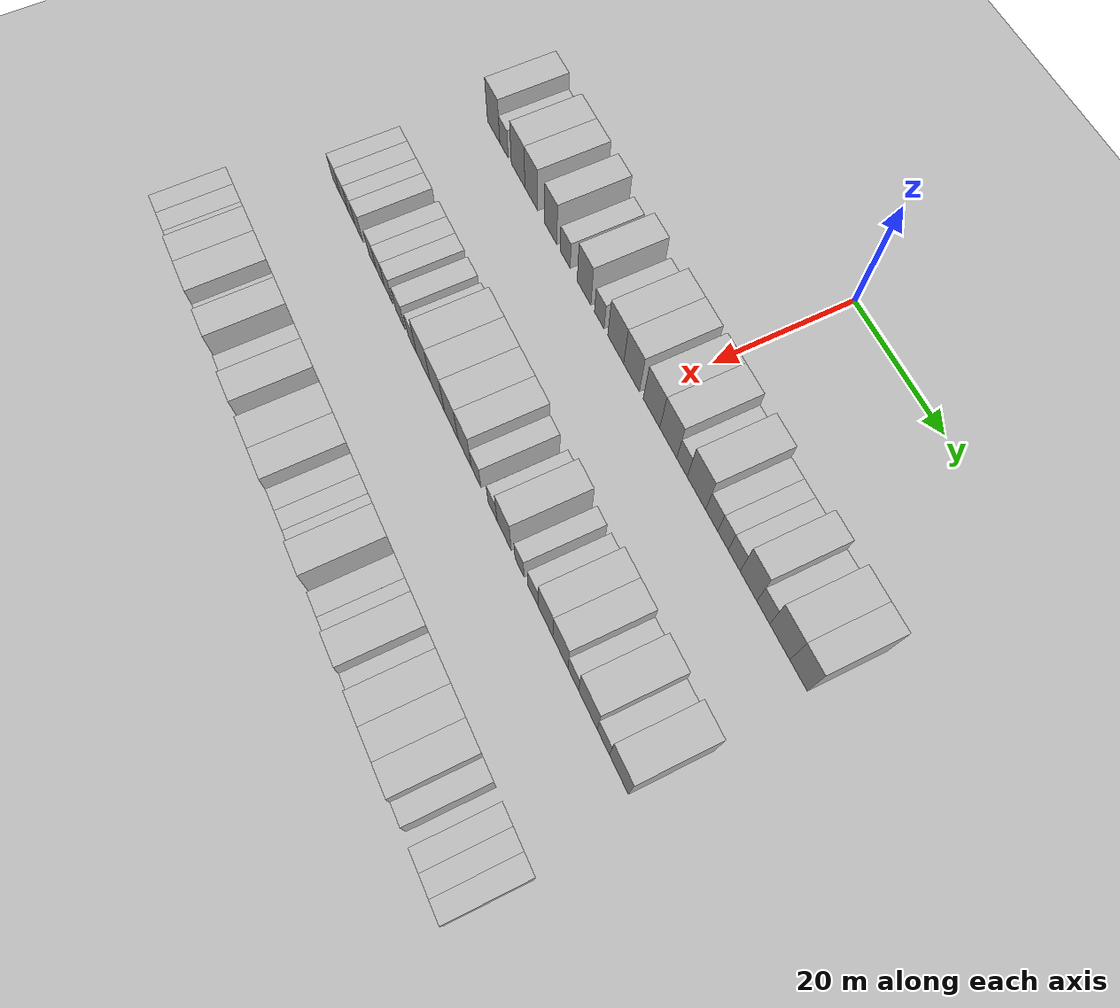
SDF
<sdf version="1.6">
 <world name="default">
  <include><name>ground_plane_1</name><uri>model://HANNAS_ground_plane</uri></include>
  <include>
   <name>ground_plane_2</name>
   <uri>model://HANNAS_ground_plane</uri>
   <pose>100 0 0  0 0 0</pose>
  </include>
  <model name="building_37">
   <static>1</static>
   <pose>25.0000 -42.3587 0 0.000000 0.000000 0.000000</pose>
   <link name="link">
    <pose>0 0 4.50 0 0 0</pose>
    <collision name="collision"><geometry><box><size>10.0000 3.9419 9.0000</size></box></geometry></collision>
    <visual name="visual">
     <cast_shadows>0</cast_shadows>
     <geometry><box><size>10.0000 3.9419 9.0000</size></box></geometry>
     <material>
      <script>
       <uri>model://HANNAS_wall/materials/scripts</uri>
       <uri>model://HANNAS_wall/materials/textures</uri>
       <name>vrc/HANNAS_wall</name>
      </script>
     </material>
    </visual>
   </link>
  </model>
  <model name="building_38">
   <static>1</static>
   <pose>25.0000 -39.0731 0 0.000000 0.000000 0.000000</pose>
   <link name="link">
    <pose>0 0 3.00 0 0 0</pose>
    <collision name="collision"><geometry><box><size>10.0000 2.6292 6.0000</size></box></geometry></collision>
    <visual name="visual">
     <cast_shadows>0</cast_shadows>
     <geometry><box><size>10.0000 2.6292 6.0000</size></box></geometry>
     <material>
      <script>
       <uri>model://HANNAS_wall/materials/scripts</uri>
       <uri>model://HANNAS_wall/materials/textures</uri>
       <name>vrc/HANNAS_wall</name>
      </script>
     </material>
    </visual>
   </link>
  </model>
  <model name="building_39">
   <static>1</static>
   <pose>25.0000 -34.6380 0 0.000000 0.000000 0.000000</pose>
   <link name="link">
    <pose>0 0 4.50 0 0 0</pose>
    <collision name="collision"><geometry><box><size>10.0000 4.2411 9.0000</size></box></geometry></collision>
    <visual name="visual">
     <cast_shadows>0</cast_shadows>
     <geometry><box><size>10.0000 4.2411 9.0000</size></box></geometry>
     <material>
      <script>
       <uri>model://HANNAS_wall/materials/scripts</uri>
       <uri>model://HANNAS_wall/materials/textures</uri>
       <name>vrc/HANNAS_wall</name>
      </script>
     </material>
    </visual>
   </link>
  </model>
  <model name="building_40">
   <static>1</static>
   <pose>25.0000 -30.5647 0 0.000000 0.000000 0.000000</pose>
   <link name="link">
    <pose>0 0 4.50 0 0 0</pose>
    <collision name="collision"><geometry><box><size>10.0000 3.9054 9.0000</size></box></geometry></collision>
    <visual name="visual">
     <cast_shadows>0</cast_shadows>
     <geometry><box><size>10.0000 3.9054 9.0000</size></box></geometry>
     <material>
      <script>
       <uri>model://HANNAS_wall/materials/scripts</uri>
       <uri>model://HANNAS_wall/materials/textures</uri>
       <name>vrc/HANNAS_wall</name>
      </script>
     </material>
    </visual>
   </link>
  </model>
  <model name="building_41">
   <static>1</static>
   <pose>25.0000 -24.7812 0 0.000000 0.000000 0.000000</pose>
   <link name="link">
    <pose>0 0 4.50 0 0 0</pose>
    <collision name="collision"><geometry><box><size>10.0000 3.6616 9.0000</size></box></geometry></collision>
    <visual name="visual">
     <cast_shadows>0</cast_shadows>
     <geometry><box><size>10.0000 3.6616 9.0000</size></box></geometry>
     <material>
      <script>
       <uri>model://HANNAS_wall/materials/scripts</uri>
       <uri>model://HANNAS_wall/materials/textures</uri>
       <name>vrc/HANNAS_wall</name>
      </script>
     </material>
    </visual>
   </link>
  </model>
  <model name="building_42">
   <static>1</static>
   <pose>25.0000 -20.5192 0 0.000000 0.000000 0.000000</pose>
   <link name="link">
    <pose>0 0 3.00 0 0 0</pose>
    <collision name="collision"><geometry><box><size>10.0000 2.8624 6.0000</size></box></geometry></collision>
    <visual name="visual">
     <cast_shadows>0</cast_shadows>
     <geometry><box><size>10.0000 2.8624 6.0000</size></box></geometry>
     <material>
      <script>
       <uri>model://HANNAS_wall/materials/scripts</uri>
       <uri>model://HANNAS_wall/materials/textures</uri>
       <name>vrc/HANNAS_wall</name>
      </script>
     </material>
    </visual>
   </link>
  </model>
  <model name="building_43">
   <static>1</static>
   <pose>25.0000 -15.1681 0 0.000000 0.000000 0.000000</pose>
   <link name="link">
    <pose>0 0 4.50 0 0 0</pose>
    <collision name="collision"><geometry><box><size>10.0000 3.8398 9.0000</size></box></geometry></collision>
    <visual name="visual">
     <cast_shadows>0</cast_shadows>
     <geometry><box><size>10.0000 3.8398 9.0000</size></box></geometry>
     <material>
      <script>
       <uri>model://HANNAS_wall/materials/scripts</uri>
       <uri>model://HANNAS_wall/materials/textures</uri>
       <name>vrc/HANNAS_wall</name>
      </script>
     </material>
    </visual>
   </link>
  </model>
  <model name="building_44">
   <static>1</static>
   <pose>25.0000 -10.9305 0 0.000000 0.000000 0.000000</pose>
   <link name="link">
    <pose>0 0 3.00 0 0 0</pose>
    <collision name="collision"><geometry><box><size>10.0000 2.6355 6.0000</size></box></geometry></collision>
    <visual name="visual">
     <cast_shadows>0</cast_shadows>
     <geometry><box><size>10.0000 2.6355 6.0000</size></box></geometry>
     <material>
      <script>
       <uri>model://HANNAS_wall/materials/scripts</uri>
       <uri>model://HANNAS_wall/materials/textures</uri>
       <name>vrc/HANNAS_wall</name>
      </script>
     </material>
    </visual>
   </link>
  </model>
  <model name="building_45">
   <static>1</static>
   <pose>25.0000 -6.4757 0 0.000000 0.000000 0.000000</pose>
   <link name="link">
    <pose>0 0 4.50 0 0 0</pose>
    <collision name="collision"><geometry><box><size>10.0000 4.2740 9.0000</size></box></geometry></collision>
    <visual name="visual">
     <cast_shadows>0</cast_shadows>
     <geometry><box><size>10.0000 4.2740 9.0000</size></box></geometry>
     <material>
      <script>
       <uri>model://HANNAS_wall/materials/scripts</uri>
       <uri>model://HANNAS_wall/materials/textures</uri>
       <name>vrc/HANNAS_wall</name>
      </script>
     </material>
    </visual>
   </link>
  </model>
  <model name="building_46">
   <static>1</static>
   <pose>25.0000 -2.2622 0 0.000000 0.000000 0.000000</pose>
   <link name="link">
    <pose>0 0 4.50 0 0 0</pose>
    <collision name="collision"><geometry><box><size>10.0000 4.1531 9.0000</size></box></geometry></collision>
    <visual name="visual">
     <cast_shadows>0</cast_shadows>
     <geometry><box><size>10.0000 4.1531 9.0000</size></box></geometry>
     <material>
      <script>
       <uri>model://HANNAS_wall/materials/scripts</uri>
       <uri>model://HANNAS_wall/materials/textures</uri>
       <name>vrc/HANNAS_wall</name>
      </script>
     </material>
    </visual>
   </link>
  </model>
  <model name="building_47">
   <static>1</static>
   <pose>25.0000 2.9210 0 0.000000 0.000000 0.000000</pose>
   <link name="link">
    <pose>0 0 4.50 0 0 0</pose>
    <collision name="collision"><geometry><box><size>10.0000 4.2133 9.0000</size></box></geometry></collision>
    <visual name="visual">
     <cast_shadows>0</cast_shadows>
     <geometry><box><size>10.0000 4.2133 9.0000</size></box></geometry>
     <material>
      <script>
       <uri>model://HANNAS_wall/materials/scripts</uri>
       <uri>model://HANNAS_wall/materials/textures</uri>
       <name>vrc/HANNAS_wall</name>
      </script>
     </material>
    </visual>
   </link>
  </model>
  <model name="building_48">
   <static>1</static>
   <pose>25.0000 7.1436 0 0.000000 0.000000 0.000000</pose>
   <link name="link">
    <pose>0 0 4.50 0 0 0</pose>
    <collision name="collision"><geometry><box><size>10.0000 4.2320 9.0000</size></box></geometry></collision>
    <visual name="visual">
     <cast_shadows>0</cast_shadows>
     <geometry><box><size>10.0000 4.2320 9.0000</size></box></geometry>
     <material>
      <script>
       <uri>model://HANNAS_wall/materials/scripts</uri>
       <uri>model://HANNAS_wall/materials/textures</uri>
       <name>vrc/HANNAS_wall</name>
      </script>
     </material>
    </visual>
   </link>
  </model>
  <model name="building_49">
   <static>1</static>
   <pose>25.0000 10.5421 0 0.000000 0.000000 0.000000</pose>
   <link name="link">
    <pose>0 0 3.00 0 0 0</pose>
    <collision name="collision"><geometry><box><size>10.0000 2.5648 6.0000</size></box></geometry></collision>
    <visual name="visual">
     <cast_shadows>0</cast_shadows>
     <geometry><box><size>10.0000 2.5648 6.0000</size></box></geometry>
     <material>
      <script>
       <uri>model://HANNAS_wall/materials/scripts</uri>
       <uri>model://HANNAS_wall/materials/textures</uri>
       <name>vrc/HANNAS_wall</name>
      </script>
     </material>
    </visual>
   </link>
  </model>
  <model name="building_50">
   <static>1</static>
   <pose>25.0000 14.0366 0 0.000000 0.000000 0.000000</pose>
   <link name="link">
    <pose>0 0 4.50 0 0 0</pose>
    <collision name="collision"><geometry><box><size>10.0000 4.4241 9.0000</size></box></geometry></collision>
    <visual name="visual">
     <cast_shadows>0</cast_shadows>
     <geometry><box><size>10.0000 4.4241 9.0000</size></box></geometry>
     <material>
      <script>
       <uri>model://HANNAS_wall/materials/scripts</uri>
       <uri>model://HANNAS_wall/materials/textures</uri>
       <name>vrc/HANNAS_wall</name>
      </script>
     </material>
    </visual>
   </link>
  </model>
  <model name="building_51">
   <static>1</static>
   <pose>25.0000 17.6739 0 0.000000 0.000000 0.000000</pose>
   <link name="link">
    <pose>0 0 3.00 0 0 0</pose>
    <collision name="collision"><geometry><box><size>10.0000 2.8505 6.0000</size></box></geometry></collision>
    <visual name="visual">
     <cast_shadows>0</cast_shadows>
     <geometry><box><size>10.0000 2.8505 6.0000</size></box></geometry>
     <material>
      <script>
       <uri>model://HANNAS_wall/materials/scripts</uri>
       <uri>model://HANNAS_wall/materials/textures</uri>
       <name>vrc/HANNAS_wall</name>
      </script>
     </material>
    </visual>
   </link>
  </model>
  <model name="building_52">
   <static>1</static>
   <pose>25.0000 20.3169 0 0.000000 0.000000 0.000000</pose>
   <link name="link">
    <pose>0 0 3.00 0 0 0</pose>
    <collision name="collision"><geometry><box><size>10.0000 2.4355 6.0000</size></box></geometry></collision>
    <visual name="visual">
     <cast_shadows>0</cast_shadows>
     <geometry><box><size>10.0000 2.4355 6.0000</size></box></geometry>
     <material>
      <script>
       <uri>model://HANNAS_wall/materials/scripts</uri>
       <uri>model://HANNAS_wall/materials/textures</uri>
       <name>vrc/HANNAS_wall</name>
      </script>
     </material>
    </visual>
   </link>
  </model>
  <model name="building_53">
   <static>1</static>
   <pose>25.0000 22.8967 0 0.000000 0.000000 0.000000</pose>
   <link name="link">
    <pose>0 0 3.00 0 0 0</pose>
    <collision name="collision"><geometry><box><size>10.0000 2.7239 6.0000</size></box></geometry></collision>
    <visual name="visual">
     <cast_shadows>0</cast_shadows>
     <geometry><box><size>10.0000 2.7239 6.0000</size></box></geometry>
     <material>
      <script>
       <uri>model://HANNAS_wall/materials/scripts</uri>
       <uri>model://HANNAS_wall/materials/textures</uri>
       <name>vrc/HANNAS_wall</name>
      </script>
     </material>
    </visual>
   </link>
  </model>
  <model name="building_54">
   <static>1</static>
   <pose>25.0000 26.1334 0 0.000000 0.000000 0.000000</pose>
   <link name="link">
    <pose>0 0 4.50 0 0 0</pose>
    <collision name="collision"><geometry><box><size>10.0000 3.7496 9.0000</size></box></geometry></collision>
    <visual name="visual">
     <cast_shadows>0</cast_shadows>
     <geometry><box><size>10.0000 3.7496 9.0000</size></box></geometry>
     <material>
      <script>
       <uri>model://HANNAS_wall/materials/scripts</uri>
       <uri>model://HANNAS_wall/materials/textures</uri>
       <name>vrc/HANNAS_wall</name>
      </script>
     </material>
    </visual>
   </link>
  </model>
  <model name="building_55">
   <static>1</static>
   <pose>25.0000 29.4252 0 0.000000 0.000000 0.000000</pose>
   <link name="link">
    <pose>0 0 3.00 0 0 0</pose>
    <collision name="collision"><geometry><box><size>10.0000 2.8341 6.0000</size></box></geometry></collision>
    <visual name="visual">
     <cast_shadows>0</cast_shadows>
     <geometry><box><size>10.0000 2.8341 6.0000</size></box></geometry>
     <material>
      <script>
       <uri>model://HANNAS_wall/materials/scripts</uri>
       <uri>model://HANNAS_wall/materials/textures</uri>
       <name>vrc/HANNAS_wall</name>
      </script>
     </material>
    </visual>
   </link>
  </model>
  <model name="building_56">
   <static>1</static>
   <pose>25.0000 33.0128 0 0.000000 0.000000 0.000000</pose>
   <link name="link">
    <pose>0 0 4.50 0 0 0</pose>
    <collision name="collision"><geometry><box><size>10.0000 4.3410 9.0000</size></box></geometry></collision>
    <visual name="visual">
     <cast_shadows>0</cast_shadows>
     <geometry><box><size>10.0000 4.3410 9.0000</size></box></geometry>
     <material>
      <script>
       <uri>model://HANNAS_wall/materials/scripts</uri>
       <uri>model://HANNAS_wall/materials/textures</uri>
       <name>vrc/HANNAS_wall</name>
      </script>
     </material>
    </visual>
   </link>
  </model>
  <model name="building_57">
   <static>1</static>
   <pose>25.0000 37.0202 0 0.000000 0.000000 0.000000</pose>
   <link name="link">
    <pose>0 0 4.50 0 0 0</pose>
    <collision name="collision"><geometry><box><size>10.0000 3.6737 9.0000</size></box></geometry></collision>
    <visual name="visual">
     <cast_shadows>0</cast_shadows>
     <geometry><box><size>10.0000 3.6737 9.0000</size></box></geometry>
     <material>
      <script>
       <uri>model://HANNAS_wall/materials/scripts</uri>
       <uri>model://HANNAS_wall/materials/textures</uri>
       <name>vrc/HANNAS_wall</name>
      </script>
     </material>
    </visual>
   </link>
  </model>
  <model name="building_162">
   <static>1</static>
   <pose>47.0000 -42.9770 0 0.000000 0.000000 0.000000</pose>
   <link name="link">
    <pose>0 0 3.00 0 0 0</pose>
    <collision name="collision"><geometry><box><size>10.0000 2.5599 6.0000</size></box></geometry></collision>
    <visual name="visual">
     <cast_shadows>0</cast_shadows>
     <geometry><box><size>10.0000 2.5599 6.0000</size></box></geometry>
     <material>
      <script>
       <uri>model://HANNAS_wall/materials/scripts</uri>
       <uri>model://HANNAS_wall/materials/textures</uri>
       <name>vrc/HANNAS_wall</name>
      </script>
     </material>
    </visual>
   </link>
  </model>
  <model name="building_163">
   <static>1</static>
   <pose>47.0000 -40.2499 0 0.000000 0.000000 0.000000</pose>
   <link name="link">
    <pose>0 0 3.00 0 0 0</pose>
    <collision name="collision"><geometry><box><size>10.0000 2.8942 6.0000</size></box></geometry></collision>
    <visual name="visual">
     <cast_shadows>0</cast_shadows>
     <geometry><box><size>10.0000 2.8942 6.0000</size></box></geometry>
     <material>
      <script>
       <uri>model://HANNAS_wall/materials/scripts</uri>
       <uri>model://HANNAS_wall/materials/textures</uri>
       <name>vrc/HANNAS_wall</name>
      </script>
     </material>
    </visual>
   </link>
  </model>
  <model name="building_164">
   <static>1</static>
   <pose>47.0000 -37.5944 0 0.000000 0.000000 0.000000</pose>
   <link name="link">
    <pose>0 0 3.00 0 0 0</pose>
    <collision name="collision"><geometry><box><size>10.0000 2.4168 6.0000</size></box></geometry></collision>
    <visual name="visual">
     <cast_shadows>0</cast_shadows>
     <geometry><box><size>10.0000 2.4168 6.0000</size></box></geometry>
     <material>
      <script>
       <uri>model://HANNAS_wall/materials/scripts</uri>
       <uri>model://HANNAS_wall/materials/textures</uri>
       <name>vrc/HANNAS_wall</name>
      </script>
     </material>
    </visual>
   </link>
  </model>
  <model name="building_165">
   <static>1</static>
   <pose>47.0000 -35.0392 0 0.000000 0.000000 0.000000</pose>
   <link name="link">
    <pose>0 0 3.00 0 0 0</pose>
    <collision name="collision"><geometry><box><size>10.0000 2.6936 6.0000</size></box></geometry></collision>
    <visual name="visual">
     <cast_shadows>0</cast_shadows>
     <geometry><box><size>10.0000 2.6936 6.0000</size></box></geometry>
     <material>
      <script>
       <uri>model://HANNAS_wall/materials/scripts</uri>
       <uri>model://HANNAS_wall/materials/textures</uri>
       <name>vrc/HANNAS_wall</name>
      </script>
     </material>
    </visual>
   </link>
  </model>
  <model name="building_166">
   <static>1</static>
   <pose>47.0000 -30.4539 0 0.000000 0.000000 0.000000</pose>
   <link name="link">
    <pose>0 0 3.00 0 0 0</pose>
    <collision name="collision"><geometry><box><size>10.0000 2.4769 6.0000</size></box></geometry></collision>
    <visual name="visual">
     <cast_shadows>0</cast_shadows>
     <geometry><box><size>10.0000 2.4769 6.0000</size></box></geometry>
     <material>
      <script>
       <uri>model://HANNAS_wall/materials/scripts</uri>
       <uri>model://HANNAS_wall/materials/textures</uri>
       <name>vrc/HANNAS_wall</name>
      </script>
     </material>
    </visual>
   </link>
  </model>
  <model name="building_167">
   <static>1</static>
   <pose>47.0000 -27.8784 0 0.000000 0.000000 0.000000</pose>
   <link name="link">
    <pose>0 0 3.00 0 0 0</pose>
    <collision name="collision"><geometry><box><size>10.0000 2.6741 6.0000</size></box></geometry></collision>
    <visual name="visual">
     <cast_shadows>0</cast_shadows>
     <geometry><box><size>10.0000 2.6741 6.0000</size></box></geometry>
     <material>
      <script>
       <uri>model://HANNAS_wall/materials/scripts</uri>
       <uri>model://HANNAS_wall/materials/textures</uri>
       <name>vrc/HANNAS_wall</name>
      </script>
     </material>
    </visual>
   </link>
  </model>
  <model name="building_168">
   <static>1</static>
   <pose>47.0000 -25.1900 0 0.000000 0.000000 0.000000</pose>
   <link name="link">
    <pose>0 0 3.00 0 0 0</pose>
    <collision name="collision"><geometry><box><size>10.0000 2.7028 6.0000</size></box></geometry></collision>
    <visual name="visual">
     <cast_shadows>0</cast_shadows>
     <geometry><box><size>10.0000 2.7028 6.0000</size></box></geometry>
     <material>
      <script>
       <uri>model://HANNAS_wall/materials/scripts</uri>
       <uri>model://HANNAS_wall/materials/textures</uri>
       <name>vrc/HANNAS_wall</name>
      </script>
     </material>
    </visual>
   </link>
  </model>
  <model name="building_169">
   <static>1</static>
   <pose>47.0000 -21.3608 0 0.000000 0.000000 0.000000</pose>
   <link name="link">
    <pose>0 0 3.00 0 0 0</pose>
    <collision name="collision"><geometry><box><size>10.0000 2.9554 6.0000</size></box></geometry></collision>
    <visual name="visual">
     <cast_shadows>0</cast_shadows>
     <geometry><box><size>10.0000 2.9554 6.0000</size></box></geometry>
     <material>
      <script>
       <uri>model://HANNAS_wall/materials/scripts</uri>
       <uri>model://HANNAS_wall/materials/textures</uri>
       <name>vrc/HANNAS_wall</name>
      </script>
     </material>
    </visual>
   </link>
  </model>
  <model name="building_170">
   <static>1</static>
   <pose>47.0000 -17.5515 0 0.000000 0.000000 0.000000</pose>
   <link name="link">
    <pose>0 0 3.00 0 0 0</pose>
    <collision name="collision"><geometry><box><size>10.0000 2.6632 6.0000</size></box></geometry></collision>
    <visual name="visual">
     <cast_shadows>0</cast_shadows>
     <geometry><box><size>10.0000 2.6632 6.0000</size></box></geometry>
     <material>
      <script>
       <uri>model://HANNAS_wall/materials/scripts</uri>
       <uri>model://HANNAS_wall/materials/textures</uri>
       <name>vrc/HANNAS_wall</name>
      </script>
     </material>
    </visual>
   </link>
  </model>
  <model name="building_171">
   <static>1</static>
   <pose>47.0000 -14.0822 0 0.000000 0.000000 0.000000</pose>
   <link name="link">
    <pose>0 0 4.50 0 0 0</pose>
    <collision name="collision"><geometry><box><size>10.0000 4.2752 9.0000</size></box></geometry></collision>
    <visual name="visual">
     <cast_shadows>0</cast_shadows>
     <geometry><box><size>10.0000 4.2752 9.0000</size></box></geometry>
     <material>
      <script>
       <uri>model://HANNAS_wall/materials/scripts</uri>
       <uri>model://HANNAS_wall/materials/textures</uri>
       <name>vrc/HANNAS_wall</name>
      </script>
     </material>
    </visual>
   </link>
  </model>
  <model name="building_172">
   <static>1</static>
   <pose>47.0000 -9.8358 0 0.000000 0.000000 0.000000</pose>
   <link name="link">
    <pose>0 0 4.50 0 0 0</pose>
    <collision name="collision"><geometry><box><size>10.0000 4.2177 9.0000</size></box></geometry></collision>
    <visual name="visual">
     <cast_shadows>0</cast_shadows>
     <geometry><box><size>10.0000 4.2177 9.0000</size></box></geometry>
     <material>
      <script>
       <uri>model://HANNAS_wall/materials/scripts</uri>
       <uri>model://HANNAS_wall/materials/textures</uri>
       <name>vrc/HANNAS_wall</name>
      </script>
     </material>
    </visual>
   </link>
  </model>
  <model name="building_173">
   <static>1</static>
   <pose>47.0000 -5.6814 0 0.000000 0.000000 0.000000</pose>
   <link name="link">
    <pose>0 0 4.50 0 0 0</pose>
    <collision name="collision"><geometry><box><size>10.0000 4.0912 9.0000</size></box></geometry></collision>
    <visual name="visual">
     <cast_shadows>0</cast_shadows>
     <geometry><box><size>10.0000 4.0912 9.0000</size></box></geometry>
     <material>
      <script>
       <uri>model://HANNAS_wall/materials/scripts</uri>
       <uri>model://HANNAS_wall/materials/textures</uri>
       <name>vrc/HANNAS_wall</name>
      </script>
     </material>
    </visual>
   </link>
  </model>
  <model name="building_174">
   <static>1</static>
   <pose>47.0000 -1.7182 0 0.000000 0.000000 0.000000</pose>
   <link name="link">
    <pose>0 0 4.50 0 0 0</pose>
    <collision name="collision"><geometry><box><size>10.0000 3.8352 9.0000</size></box></geometry></collision>
    <visual name="visual">
     <cast_shadows>0</cast_shadows>
     <geometry><box><size>10.0000 3.8352 9.0000</size></box></geometry>
     <material>
      <script>
       <uri>model://HANNAS_wall/materials/scripts</uri>
       <uri>model://HANNAS_wall/materials/textures</uri>
       <name>vrc/HANNAS_wall</name>
      </script>
     </material>
    </visual>
   </link>
  </model>
  <model name="building_175">
   <static>1</static>
   <pose>47.0000 1.5339 0 0.000000 0.000000 0.000000</pose>
   <link name="link">
    <pose>0 0 3.00 0 0 0</pose>
    <collision name="collision"><geometry><box><size>10.0000 2.6690 6.0000</size></box></geometry></collision>
    <visual name="visual">
     <cast_shadows>0</cast_shadows>
     <geometry><box><size>10.0000 2.6690 6.0000</size></box></geometry>
     <material>
      <script>
       <uri>model://HANNAS_wall/materials/scripts</uri>
       <uri>model://HANNAS_wall/materials/textures</uri>
       <name>vrc/HANNAS_wall</name>
      </script>
     </material>
    </visual>
   </link>
  </model>
  <model name="building_176">
   <static>1</static>
   <pose>47.0000 6.1188 0 0.000000 0.000000 0.000000</pose>
   <link name="link">
    <pose>0 0 3.00 0 0 0</pose>
    <collision name="collision"><geometry><box><size>10.0000 2.5008 6.0000</size></box></geometry></collision>
    <visual name="visual">
     <cast_shadows>0</cast_shadows>
     <geometry><box><size>10.0000 2.5008 6.0000</size></box></geometry>
     <material>
      <script>
       <uri>model://HANNAS_wall/materials/scripts</uri>
       <uri>model://HANNAS_wall/materials/textures</uri>
       <name>vrc/HANNAS_wall</name>
      </script>
     </material>
    </visual>
   </link>
  </model>
  <model name="building_177">
   <static>1</static>
   <pose>47.0000 9.2752 0 0.000000 0.000000 0.000000</pose>
   <link name="link">
    <pose>0 0 4.50 0 0 0</pose>
    <collision name="collision"><geometry><box><size>10.0000 3.8120 9.0000</size></box></geometry></collision>
    <visual name="visual">
     <cast_shadows>0</cast_shadows>
     <geometry><box><size>10.0000 3.8120 9.0000</size></box></geometry>
     <material>
      <script>
       <uri>model://HANNAS_wall/materials/scripts</uri>
       <uri>model://HANNAS_wall/materials/textures</uri>
       <name>vrc/HANNAS_wall</name>
      </script>
     </material>
    </visual>
   </link>
  </model>
  <model name="building_178">
   <static>1</static>
   <pose>47.0000 13.3831 0 0.000000 0.000000 0.000000</pose>
   <link name="link">
    <pose>0 0 3.00 0 0 0</pose>
    <collision name="collision"><geometry><box><size>10.0000 2.4039 6.0000</size></box></geometry></collision>
    <visual name="visual">
     <cast_shadows>0</cast_shadows>
     <geometry><box><size>10.0000 2.4039 6.0000</size></box></geometry>
     <material>
      <script>
       <uri>model://HANNAS_wall/materials/scripts</uri>
       <uri>model://HANNAS_wall/materials/textures</uri>
       <name>vrc/HANNAS_wall</name>
      </script>
     </material>
    </visual>
   </link>
  </model>
  <model name="building_179">
   <static>1</static>
   <pose>47.0000 16.9525 0 0.000000 0.000000 0.000000</pose>
   <link name="link">
    <pose>0 0 3.00 0 0 0</pose>
    <collision name="collision"><geometry><box><size>10.0000 2.7348 6.0000</size></box></geometry></collision>
    <visual name="visual">
     <cast_shadows>0</cast_shadows>
     <geometry><box><size>10.0000 2.7348 6.0000</size></box></geometry>
     <material>
      <script>
       <uri>model://HANNAS_wall/materials/scripts</uri>
       <uri>model://HANNAS_wall/materials/textures</uri>
       <name>vrc/HANNAS_wall</name>
      </script>
     </material>
    </visual>
   </link>
  </model>
  <model name="building_180">
   <static>1</static>
   <pose>47.0000 20.1521 0 0.000000 0.000000 0.000000</pose>
   <link name="link">
    <pose>0 0 4.50 0 0 0</pose>
    <collision name="collision"><geometry><box><size>10.0000 3.6645 9.0000</size></box></geometry></collision>
    <visual name="visual">
     <cast_shadows>0</cast_shadows>
     <geometry><box><size>10.0000 3.6645 9.0000</size></box></geometry>
     <material>
      <script>
       <uri>model://HANNAS_wall/materials/scripts</uri>
       <uri>model://HANNAS_wall/materials/textures</uri>
       <name>vrc/HANNAS_wall</name>
      </script>
     </material>
    </visual>
   </link>
  </model>
  <model name="building_181">
   <static>1</static>
   <pose>47.0000 23.8754 0 0.000000 0.000000 0.000000</pose>
   <link name="link">
    <pose>0 0 4.50 0 0 0</pose>
    <collision name="collision"><geometry><box><size>10.0000 3.7820 9.0000</size></box></geometry></collision>
    <visual name="visual">
     <cast_shadows>0</cast_shadows>
     <geometry><box><size>10.0000 3.7820 9.0000</size></box></geometry>
     <material>
      <script>
       <uri>model://HANNAS_wall/materials/scripts</uri>
       <uri>model://HANNAS_wall/materials/textures</uri>
       <name>vrc/HANNAS_wall</name>
      </script>
     </material>
    </visual>
   </link>
  </model>
  <model name="building_182">
   <static>1</static>
   <pose>47.0000 27.0585 0 0.000000 0.000000 0.000000</pose>
   <link name="link">
    <pose>0 0 3.00 0 0 0</pose>
    <collision name="collision"><geometry><box><size>10.0000 2.5841 6.0000</size></box></geometry></collision>
    <visual name="visual">
     <cast_shadows>0</cast_shadows>
     <geometry><box><size>10.0000 2.5841 6.0000</size></box></geometry>
     <material>
      <script>
       <uri>model://HANNAS_wall/materials/scripts</uri>
       <uri>model://HANNAS_wall/materials/textures</uri>
       <name>vrc/HANNAS_wall</name>
      </script>
     </material>
    </visual>
   </link>
  </model>
  <model name="building_183">
   <static>1</static>
   <pose>47.0000 30.5778 0 0.000000 0.000000 0.000000</pose>
   <link name="link">
    <pose>0 0 4.50 0 0 0</pose>
    <collision name="collision"><geometry><box><size>10.0000 4.4544 9.0000</size></box></geometry></collision>
    <visual name="visual">
     <cast_shadows>0</cast_shadows>
     <geometry><box><size>10.0000 4.4544 9.0000</size></box></geometry>
     <material>
      <script>
       <uri>model://HANNAS_wall/materials/scripts</uri>
       <uri>model://HANNAS_wall/materials/textures</uri>
       <name>vrc/HANNAS_wall</name>
      </script>
     </material>
    </visual>
   </link>
  </model>
  <model name="building_184">
   <static>1</static>
   <pose>47.0000 34.2448 0 0.000000 0.000000 0.000000</pose>
   <link name="link">
    <pose>0 0 3.00 0 0 0</pose>
    <collision name="collision"><geometry><box><size>10.0000 2.8797 6.0000</size></box></geometry></collision>
    <visual name="visual">
     <cast_shadows>0</cast_shadows>
     <geometry><box><size>10.0000 2.8797 6.0000</size></box></geometry>
     <material>
      <script>
       <uri>model://HANNAS_wall/materials/scripts</uri>
       <uri>model://HANNAS_wall/materials/textures</uri>
       <name>vrc/HANNAS_wall</name>
      </script>
     </material>
    </visual>
   </link>
  </model>
  <model name="building_185">
   <static>1</static>
   <pose>47.0000 37.8596 0 0.000000 0.000000 0.000000</pose>
   <link name="link">
    <pose>0 0 4.50 0 0 0</pose>
    <collision name="collision"><geometry><box><size>10.0000 4.3499 9.0000</size></box></geometry></collision>
    <visual name="visual">
     <cast_shadows>0</cast_shadows>
     <geometry><box><size>10.0000 4.3499 9.0000</size></box></geometry>
     <material>
      <script>
       <uri>model://HANNAS_wall/materials/scripts</uri>
       <uri>model://HANNAS_wall/materials/textures</uri>
       <name>vrc/HANNAS_wall</name>
      </script>
     </material>
    </visual>
   </link>
  </model>
  <model name="building_287">
   <static>1</static>
   <pose>69.0000 -46.3096 0 0.000000 0.000000 0.000000</pose>
   <link name="link">
    <pose>0 0 3.00 0 0 0</pose>
    <collision name="collision"><geometry><box><size>10.0000 2.8162 6.0000</size></box></geometry></collision>
    <visual name="visual">
     <cast_shadows>0</cast_shadows>
     <geometry><box><size>10.0000 2.8162 6.0000</size></box></geometry>
     <material>
      <script>
       <uri>model://HANNAS_wall/materials/scripts</uri>
       <uri>model://HANNAS_wall/materials/textures</uri>
       <name>vrc/HANNAS_wall</name>
      </script>
     </material>
    </visual>
   </link>
  </model>
  <model name="building_288">
   <static>1</static>
   <pose>69.0000 -43.4509 0 0.000000 0.000000 0.000000</pose>
   <link name="link">
    <pose>0 0 3.00 0 0 0</pose>
    <collision name="collision"><geometry><box><size>10.0000 2.9013 6.0000</size></box></geometry></collision>
    <visual name="visual">
     <cast_shadows>0</cast_shadows>
     <geometry><box><size>10.0000 2.9013 6.0000</size></box></geometry>
     <material>
      <script>
       <uri>model://HANNAS_wall/materials/scripts</uri>
       <uri>model://HANNAS_wall/materials/textures</uri>
       <name>vrc/HANNAS_wall</name>
      </script>
     </material>
    </visual>
   </link>
  </model>
  <model name="building_289">
   <static>1</static>
   <pose>69.0000 -40.5129 0 0.000000 0.000000 0.000000</pose>
   <link name="link">
    <pose>0 0 3.00 0 0 0</pose>
    <collision name="collision"><geometry><box><size>10.0000 2.9747 6.0000</size></box></geometry></collision>
    <visual name="visual">
     <cast_shadows>0</cast_shadows>
     <geometry><box><size>10.0000 2.9747 6.0000</size></box></geometry>
     <material>
      <script>
       <uri>model://HANNAS_wall/materials/scripts</uri>
       <uri>model://HANNAS_wall/materials/textures</uri>
       <name>vrc/HANNAS_wall</name>
      </script>
     </material>
    </visual>
   </link>
  </model>
  <model name="building_290">
   <static>1</static>
   <pose>69.0000 -37.1033 0 0.000000 0.000000 0.000000</pose>
   <link name="link">
    <pose>0 0 4.50 0 0 0</pose>
    <collision name="collision"><geometry><box><size>10.0000 3.8445 9.0000</size></box></geometry></collision>
    <visual name="visual">
     <cast_shadows>0</cast_shadows>
     <geometry><box><size>10.0000 3.8445 9.0000</size></box></geometry>
     <material>
      <script>
       <uri>model://HANNAS_wall/materials/scripts</uri>
       <uri>model://HANNAS_wall/materials/textures</uri>
       <name>vrc/HANNAS_wall</name>
      </script>
     </material>
    </visual>
   </link>
  </model>
  <model name="building_291">
   <static>1</static>
   <pose>69.0000 -32.9557 0 0.000000 0.000000 0.000000</pose>
   <link name="link">
    <pose>0 0 4.50 0 0 0</pose>
    <collision name="collision"><geometry><box><size>10.0000 4.4507 9.0000</size></box></geometry></collision>
    <visual name="visual">
     <cast_shadows>0</cast_shadows>
     <geometry><box><size>10.0000 4.4507 9.0000</size></box></geometry>
     <material>
      <script>
       <uri>model://HANNAS_wall/materials/scripts</uri>
       <uri>model://HANNAS_wall/materials/textures</uri>
       <name>vrc/HANNAS_wall</name>
      </script>
     </material>
    </visual>
   </link>
  </model>
  <model name="building_292">
   <static>1</static>
   <pose>69.0000 -29.4277 0 0.000000 0.000000 0.000000</pose>
   <link name="link">
    <pose>0 0 3.00 0 0 0</pose>
    <collision name="collision"><geometry><box><size>10.0000 2.6054 6.0000</size></box></geometry></collision>
    <visual name="visual">
     <cast_shadows>0</cast_shadows>
     <geometry><box><size>10.0000 2.6054 6.0000</size></box></geometry>
     <material>
      <script>
       <uri>model://HANNAS_wall/materials/scripts</uri>
       <uri>model://HANNAS_wall/materials/textures</uri>
       <name>vrc/HANNAS_wall</name>
      </script>
     </material>
    </visual>
   </link>
  </model>
  <model name="building_293">
   <static>1</static>
   <pose>69.0000 -26.1673 0 0.000000 0.000000 0.000000</pose>
   <link name="link">
    <pose>0 0 4.50 0 0 0</pose>
    <collision name="collision"><geometry><box><size>10.0000 3.9153 9.0000</size></box></geometry></collision>
    <visual name="visual">
     <cast_shadows>0</cast_shadows>
     <geometry><box><size>10.0000 3.9153 9.0000</size></box></geometry>
     <material>
      <script>
       <uri>model://HANNAS_wall/materials/scripts</uri>
       <uri>model://HANNAS_wall/materials/textures</uri>
       <name>vrc/HANNAS_wall</name>
      </script>
     </material>
    </visual>
   </link>
  </model>
  <model name="building_294">
   <static>1</static>
   <pose>69.0000 -21.7503 0 0.000000 0.000000 0.000000</pose>
   <link name="link">
    <pose>0 0 3.00 0 0 0</pose>
    <collision name="collision"><geometry><box><size>10.0000 2.9189 6.0000</size></box></geometry></collision>
    <visual name="visual">
     <cast_shadows>0</cast_shadows>
     <geometry><box><size>10.0000 2.9189 6.0000</size></box></geometry>
     <material>
      <script>
       <uri>model://HANNAS_wall/materials/scripts</uri>
       <uri>model://HANNAS_wall/materials/textures</uri>
       <name>vrc/HANNAS_wall</name>
      </script>
     </material>
    </visual>
   </link>
  </model>
  <model name="building_295">
   <static>1</static>
   <pose>69.0000 -17.2639 0 0.000000 0.000000 0.000000</pose>
   <link name="link">
    <pose>0 0 4.50 0 0 0</pose>
    <collision name="collision"><geometry><box><size>10.0000 4.0539 9.0000</size></box></geometry></collision>
    <visual name="visual">
     <cast_shadows>0</cast_shadows>
     <geometry><box><size>10.0000 4.0539 9.0000</size></box></geometry>
     <material>
      <script>
       <uri>model://HANNAS_wall/materials/scripts</uri>
       <uri>model://HANNAS_wall/materials/textures</uri>
       <name>vrc/HANNAS_wall</name>
      </script>
     </material>
    </visual>
   </link>
  </model>
  <model name="building_296">
   <static>1</static>
   <pose>69.0000 -11.1593 0 0.000000 0.000000 0.000000</pose>
   <link name="link">
    <pose>0 0 4.50 0 0 0</pose>
    <collision name="collision"><geometry><box><size>10.0000 4.1553 9.0000</size></box></geometry></collision>
    <visual name="visual">
     <cast_shadows>0</cast_shadows>
     <geometry><box><size>10.0000 4.1553 9.0000</size></box></geometry>
     <material>
      <script>
       <uri>model://HANNAS_wall/materials/scripts</uri>
       <uri>model://HANNAS_wall/materials/textures</uri>
       <name>vrc/HANNAS_wall</name>
      </script>
     </material>
    </visual>
   </link>
  </model>
  <model name="building_297">
   <static>1</static>
   <pose>69.0000 -7.0870 0 0.000000 0.000000 0.000000</pose>
   <link name="link">
    <pose>0 0 4.50 0 0 0</pose>
    <collision name="collision"><geometry><box><size>10.0000 3.9893 9.0000</size></box></geometry></collision>
    <visual name="visual">
     <cast_shadows>0</cast_shadows>
     <geometry><box><size>10.0000 3.9893 9.0000</size></box></geometry>
     <material>
      <script>
       <uri>model://HANNAS_wall/materials/scripts</uri>
       <uri>model://HANNAS_wall/materials/textures</uri>
       <name>vrc/HANNAS_wall</name>
      </script>
     </material>
    </visual>
   </link>
  </model>
  <model name="building_298">
   <static>1</static>
   <pose>69.0000 -3.7150 0 0.000000 0.000000 0.000000</pose>
   <link name="link">
    <pose>0 0 3.00 0 0 0</pose>
    <collision name="collision"><geometry><box><size>10.0000 2.7548 6.0000</size></box></geometry></collision>
    <visual name="visual">
     <cast_shadows>0</cast_shadows>
     <geometry><box><size>10.0000 2.7548 6.0000</size></box></geometry>
     <material>
      <script>
       <uri>model://HANNAS_wall/materials/scripts</uri>
       <uri>model://HANNAS_wall/materials/textures</uri>
       <name>vrc/HANNAS_wall</name>
      </script>
     </material>
    </visual>
   </link>
  </model>
  <model name="building_299">
   <static>1</static>
   <pose>69.0000 -1.0901 0 0.000000 0.000000 0.000000</pose>
   <link name="link">
    <pose>0 0 3.00 0 0 0</pose>
    <collision name="collision"><geometry><box><size>10.0000 2.4949 6.0000</size></box></geometry></collision>
    <visual name="visual">
     <cast_shadows>0</cast_shadows>
     <geometry><box><size>10.0000 2.4949 6.0000</size></box></geometry>
     <material>
      <script>
       <uri>model://HANNAS_wall/materials/scripts</uri>
       <uri>model://HANNAS_wall/materials/textures</uri>
       <name>vrc/HANNAS_wall</name>
      </script>
     </material>
    </visual>
   </link>
  </model>
  <model name="building_300">
   <static>1</static>
   <pose>69.0000 1.3574 0 0.000000 0.000000 0.000000</pose>
   <link name="link">
    <pose>0 0 3.00 0 0 0</pose>
    <collision name="collision"><geometry><box><size>10.0000 2.4001 6.0000</size></box></geometry></collision>
    <visual name="visual">
     <cast_shadows>0</cast_shadows>
     <geometry><box><size>10.0000 2.4001 6.0000</size></box></geometry>
     <material>
      <script>
       <uri>model://HANNAS_wall/materials/scripts</uri>
       <uri>model://HANNAS_wall/materials/textures</uri>
       <name>vrc/HANNAS_wall</name>
      </script>
     </material>
    </visual>
   </link>
  </model>
  <model name="building_301">
   <static>1</static>
   <pose>69.0000 4.6146 0 0.000000 0.000000 0.000000</pose>
   <link name="link">
    <pose>0 0 4.50 0 0 0</pose>
    <collision name="collision"><geometry><box><size>10.0000 4.1145 9.0000</size></box></geometry></collision>
    <visual name="visual">
     <cast_shadows>0</cast_shadows>
     <geometry><box><size>10.0000 4.1145 9.0000</size></box></geometry>
     <material>
      <script>
       <uri>model://HANNAS_wall/materials/scripts</uri>
       <uri>model://HANNAS_wall/materials/textures</uri>
       <name>vrc/HANNAS_wall</name>
      </script>
     </material>
    </visual>
   </link>
  </model>
  <model name="building_302">
   <static>1</static>
   <pose>69.0000 9.1696 0 0.000000 0.000000 0.000000</pose>
   <link name="link">
    <pose>0 0 3.00 0 0 0</pose>
    <collision name="collision"><geometry><box><size>10.0000 2.9955 6.0000</size></box></geometry></collision>
    <visual name="visual">
     <cast_shadows>0</cast_shadows>
     <geometry><box><size>10.0000 2.9955 6.0000</size></box></geometry>
     <material>
      <script>
       <uri>model://HANNAS_wall/materials/scripts</uri>
       <uri>model://HANNAS_wall/materials/textures</uri>
       <name>vrc/HANNAS_wall</name>
      </script>
     </material>
    </visual>
   </link>
  </model>
  <model name="building_303">
   <static>1</static>
   <pose>69.0000 11.9067 0 0.000000 0.000000 0.000000</pose>
   <link name="link">
    <pose>0 0 3.00 0 0 0</pose>
    <collision name="collision"><geometry><box><size>10.0000 2.4785 6.0000</size></box></geometry></collision>
    <visual name="visual">
     <cast_shadows>0</cast_shadows>
     <geometry><box><size>10.0000 2.4785 6.0000</size></box></geometry>
     <material>
      <script>
       <uri>model://HANNAS_wall/materials/scripts</uri>
       <uri>model://HANNAS_wall/materials/textures</uri>
       <name>vrc/HANNAS_wall</name>
      </script>
     </material>
    </visual>
   </link>
  </model>
  <model name="building_304">
   <static>1</static>
   <pose>69.0000 15.1292 0 0.000000 0.000000 0.000000</pose>
   <link name="link">
    <pose>0 0 4.50 0 0 0</pose>
    <collision name="collision"><geometry><box><size>10.0000 3.9666 9.0000</size></box></geometry></collision>
    <visual name="visual">
     <cast_shadows>0</cast_shadows>
     <geometry><box><size>10.0000 3.9666 9.0000</size></box></geometry>
     <material>
      <script>
       <uri>model://HANNAS_wall/materials/scripts</uri>
       <uri>model://HANNAS_wall/materials/textures</uri>
       <name>vrc/HANNAS_wall</name>
      </script>
     </material>
    </visual>
   </link>
  </model>
  <model name="building_305">
   <static>1</static>
   <pose>69.0000 18.3697 0 0.000000 0.000000 0.000000</pose>
   <link name="link">
    <pose>0 0 3.00 0 0 0</pose>
    <collision name="collision"><geometry><box><size>10.0000 2.5143 6.0000</size></box></geometry></collision>
    <visual name="visual">
     <cast_shadows>0</cast_shadows>
     <geometry><box><size>10.0000 2.5143 6.0000</size></box></geometry>
     <material>
      <script>
       <uri>model://HANNAS_wall/materials/scripts</uri>
       <uri>model://HANNAS_wall/materials/textures</uri>
       <name>vrc/HANNAS_wall</name>
      </script>
     </material>
    </visual>
   </link>
  </model>
  <model name="building_306">
   <static>1</static>
   <pose>69.0000 21.5662 0 0.000000 0.000000 0.000000</pose>
   <link name="link">
    <pose>0 0 4.50 0 0 0</pose>
    <collision name="collision"><geometry><box><size>10.0000 3.8786 9.0000</size></box></geometry></collision>
    <visual name="visual">
     <cast_shadows>0</cast_shadows>
     <geometry><box><size>10.0000 3.8786 9.0000</size></box></geometry>
     <material>
      <script>
       <uri>model://HANNAS_wall/materials/scripts</uri>
       <uri>model://HANNAS_wall/materials/textures</uri>
       <name>vrc/HANNAS_wall</name>
      </script>
     </material>
    </visual>
   </link>
  </model>
  <model name="building_307">
   <static>1</static>
   <pose>69.0000 25.3509 0 0.000000 0.000000 0.000000</pose>
   <link name="link">
    <pose>0 0 4.50 0 0 0</pose>
    <collision name="collision"><geometry><box><size>10.0000 3.6909 9.0000</size></box></geometry></collision>
    <visual name="visual">
     <cast_shadows>0</cast_shadows>
     <geometry><box><size>10.0000 3.6909 9.0000</size></box></geometry>
     <material>
      <script>
       <uri>model://HANNAS_wall/materials/scripts</uri>
       <uri>model://HANNAS_wall/materials/textures</uri>
       <name>vrc/HANNAS_wall</name>
      </script>
     </material>
    </visual>
   </link>
  </model>
  <model name="building_308">
   <static>1</static>
   <pose>69.0000 29.0809 0 0.000000 0.000000 0.000000</pose>
   <link name="link">
    <pose>0 0 4.50 0 0 0</pose>
    <collision name="collision"><geometry><box><size>10.0000 3.7691 9.0000</size></box></geometry></collision>
    <visual name="visual">
     <cast_shadows>0</cast_shadows>
     <geometry><box><size>10.0000 3.7691 9.0000</size></box></geometry>
     <material>
      <script>
       <uri>model://HANNAS_wall/materials/scripts</uri>
       <uri>model://HANNAS_wall/materials/textures</uri>
       <name>vrc/HANNAS_wall</name>
      </script>
     </material>
    </visual>
   </link>
  </model>
  <model name="building_309">
   <static>1</static>
   <pose>69.0000 32.2839 0 0.000000 0.000000 0.000000</pose>
   <link name="link">
    <pose>0 0 3.00 0 0 0</pose>
    <collision name="collision"><geometry><box><size>10.0000 2.6371 6.0000</size></box></geometry></collision>
    <visual name="visual">
     <cast_shadows>0</cast_shadows>
     <geometry><box><size>10.0000 2.6371 6.0000</size></box></geometry>
     <material>
      <script>
       <uri>model://HANNAS_wall/materials/scripts</uri>
       <uri>model://HANNAS_wall/materials/textures</uri>
       <name>vrc/HANNAS_wall</name>
      </script>
     </material>
    </visual>
   </link>
  </model>
  <model name="building_310">
   <static>1</static>
   <pose>69.0000 36.8833 0 0.000000 0.000000 0.000000</pose>
   <link name="link">
    <pose>0 0 3.00 0 0 0</pose>
    <collision name="collision"><geometry><box><size>10.0000 2.5616 6.0000</size></box></geometry></collision>
    <visual name="visual">
     <cast_shadows>0</cast_shadows>
     <geometry><box><size>10.0000 2.5616 6.0000</size></box></geometry>
     <material>
      <script>
       <uri>model://HANNAS_wall/materials/scripts</uri>
       <uri>model://HANNAS_wall/materials/textures</uri>
       <name>vrc/HANNAS_wall</name>
      </script>
     </material>
    </visual>
   </link>
  </model>
  <model name="building_311">
   <static>1</static>
   <pose>69.0000 39.4163 0 0.000000 0.000000 0.000000</pose>
   <link name="link">
    <pose>0 0 3.00 0 0 0</pose>
    <collision name="collision"><geometry><box><size>10.0000 2.5045 6.0000</size></box></geometry></collision>
    <visual name="visual">
     <cast_shadows>0</cast_shadows>
     <geometry><box><size>10.0000 2.5045 6.0000</size></box></geometry>
     <material>
      <script>
       <uri>model://HANNAS_wall/materials/scripts</uri>
       <uri>model://HANNAS_wall/materials/textures</uri>
       <name>vrc/HANNAS_wall</name>
      </script>
     </material>
    </visual>
   </link>
  </model>
  <model name="building_312">
   <static>1</static>
   <pose>69.0000 41.9661 0 0.000000 0.000000 0.000000</pose>
   <link name="link">
    <pose>0 0 3.00 0 0 0</pose>
    <collision name="collision"><geometry><box><size>10.0000 2.5950 6.0000</size></box></geometry></collision>
    <visual name="visual">
     <cast_shadows>0</cast_shadows>
     <geometry><box><size>10.0000 2.5950 6.0000</size></box></geometry>
     <material>
      <script>
       <uri>model://HANNAS_wall/materials/scripts</uri>
       <uri>model://HANNAS_wall/materials/textures</uri>
       <name>vrc/HANNAS_wall</name>
      </script>
     </material>
    </visual>
   </link>
  </model>
 </world>
</sdf>
